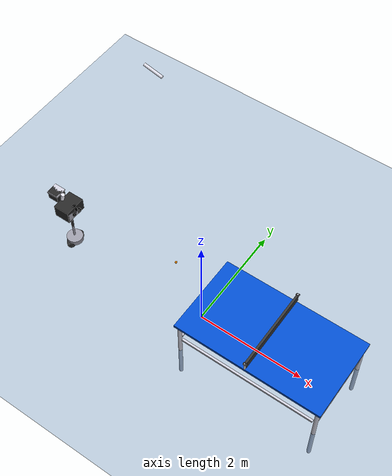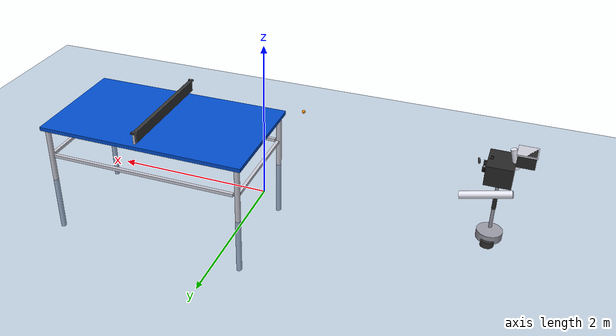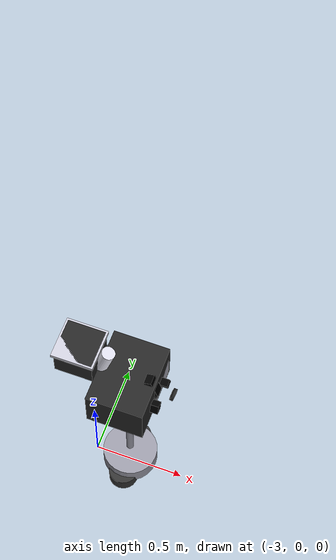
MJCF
<mujoco model="professional_table_tennis_launcher">
    <compiler angle="degree" coordinate="local"/>
    <option timestep="0.001" gravity="0 0 -9.81" viscosity="0.0001"/>
    <size njmax="1000" nconmax="100"/>

    <default>
        <geom contype="1" conaffinity="1"/>
    </default>
<asset>
        <!-- Professional Materials -->
        <material name="table_mat" rgba="0.0 0.3 0.8 1"/>
        <material name="ball_mat" rgba="1.0 1.0 1.0 1"/>
        <material name="net_mat" rgba="0.2 0.2 0.2 1"/>

        <!-- Premium Ball Launcher Materials -->
        <material name="premium_black" rgba="0.15 0.15 0.15 1"/>
        <material name="metallic_silver" rgba="0.8 0.8 0.85 1"/>
        <material name="bright_orange" rgba="1.0 0.4 0.0 1"/>
        <material name="professional_gray" rgba="0.5 0.5 0.5 1"/>
        <material name="mesh_pattern" rgba="0.25 0.25 0.25 0.9"/>
        <material name="wheel_rubber" rgba="0.2 0.2 0.2 1"/>
        <material name="base_steel" rgba="0.6 0.6 0.65 1"/>
        <material name="barrel_chrome" rgba="0.9 0.9 0.95 1"/>
        <material name="control_panel" rgba="0.1 0.1 0.12 1"/>
        <material name="led_indicator" rgba="0.0 1.0 0.0 1"/>
        <material name="pure_black" rgba="0 0 0 1"/>

        <!-- Texture Materials -->
        <material name="brushed_metal" rgba="0.7 0.7 0.75 1"/>
        <material name="carbon_fiber" rgba="0.1 0.1 0.15 1"/>
        <texture name="yellow_red_texture" type="2d" builtin="checker"
           rgb1="1.0 1.0 0.0" rgb2="0.8 0.0 0.0"
           width="256" height="128"/>
        <material name="yellow_red_material" texture="yellow_red_texture"
            specular="0.5" shininess="0.8" reflectance="0.15"/>

    </asset>

    <worldbody>
        <!-- Professional Lighting Setup -->
        <light directional="true" cutoff="100" exponent="1" diffuse="1 1 1"
               specular="0.3 0.3 0.3" pos="3 3 4" dir="-1 -1 -1"/>
        <light directional="true" cutoff="100" exponent="1" diffuse="0.6 0.6 0.8"
               specular="0.1 0.1 0.1" pos="-2 2 3" dir="1 -1 -1"/>

        <!-- Professional Court Floor -->
        <geom name="court_floor" type="plane" size="8 6 0.05" rgba="0.2 0.4 0.6 1"/>

        <!-- Professional Table Tennis Table -->
        <body name="table" pos="1.37 0 0.76">
            <geom name="table_surface" type="box" size="1.37 0.7625 0.025" material="table_mat"/>
            <body name="hit_marker" pos="0 0 0">
    <geom name="marker" type="sphere" size="0.02" rgba="1 0 0 1"/>
</body>

            <!-- Professional Table Legs with Cross Bracing -->
            <geom name="leg_fl" type="cylinder" size="0.035 0.76" pos="1.30 0.70 -0.76" material="metallic_silver"/>
            <geom name="leg_fr" type="cylinder" size="0.035 0.76" pos="-1.30 0.70 -0.76" material="metallic_silver"/>
            <geom name="leg_bl" type="cylinder" size="0.035 0.76" pos="1.30 -0.70 -0.76" material="metallic_silver"/>
            <geom name="leg_br" type="cylinder" size="0.035 0.76" pos="-1.30 -0.70 -0.76" material="metallic_silver"/>

            <!-- Cross Bracing for Stability -->
            <geom name="brace_front" type="box" size="1.25 0.02 0.02" pos="0 0.70 -0.40" material="metallic_silver"/>
            <geom name="brace_back" type="box" size="1.25 0.02 0.02" pos="0 -0.70 -0.40" material="metallic_silver"/>
            <geom name="brace_left" type="box" size="0.02 0.65 0.02" pos="1.30 0 -0.40" material="metallic_silver"/>
            <geom name="brace_right" type="box" size="0.02 0.65 0.02" pos="-1.30 0 -0.40" material="metallic_silver"/>
        </body>

        <!-- Professional Net Assembly -->
        <body name="net_assembly" pos="1.37 0 0.9125">
            <geom name="net_mesh" type="box" size="0.02 0.76 0.0762" material="net_mat"/>
            <geom name="net_post_left" type="cylinder" size="0.015 0.08" pos="0 0.77 0" material="metallic_silver"/>
            <geom name="net_post_right" type="cylinder" size="0.015 0.08" pos="0 -0.77 0" material="metallic_silver"/>
            <geom name="net_clamp_left" type="box" size="0.03 0.02 0.01" pos="0 0.77 0.07" material="premium_black"/>
            <geom name="net_clamp_right" type="box" size="0.03 0.02 0.01" pos="0 -0.77 0.07" material="premium_black"/>
        </body>

        <!-- PROFESSIONAL BALL LAUNCHER MACHINE -->
        <body name="launcher_machine" pos="-2.8 0 0.98" euler="0 0 -90">

            <!-- Main Professional Housing -->
            <geom name="main_housing" type="box" size="0.20 0.15 0.12"
                  pos="0 0 0" material="premium_black" contype="0" conaffinity="0"/>

            <!-- Decorative Side Panels -->
            <geom name="side_panel_left" type="box" size="0.18 0.02 0.10"
                  pos="0 0.13 0" material="brushed_metal" contype="0" conaffinity="0"/>
            <geom name="side_panel_right" type="box" size="0.18 0.02 0.10"
                  pos="0 -0.13 0" material="brushed_metal" contype="0" conaffinity="0"/>

            <!-- Professional Logo/Brand Panel -->
            <geom name="brand_panel" type="box" size="0.12 0.05 0.001"
                  pos="0 0 0.11" material="metallic_silver" contype="0" conaffinity="0"/>

            <!-- CENTER TARGETING SYSTEM -->
            <geom name="center_circle" type="cylinder" size="0.035 0.012"
                  pos="0 0.13 0" euler="90 0 0" material="bright_orange"
                  contype="1" conaffinity="1"/>

            <!-- Professional Targeting Grid -->
            <geom name="target_v1" type="box" size="0.0008 0.012 0.05"
                  pos="-0.02 0.142 0" material="mesh_pattern"/>
            <geom name="target_v2" type="box" size="0.0008 0.012 0.05"
                  pos="0.02 0.142 0" material="mesh_pattern"/>
            <geom name="target_v3" type="box" size="0.0008 0.012 0.05"
                  pos="0 0.142 0" material="mesh_pattern"/>
            <geom name="target_h1" type="box" size="0.05 0.012 0.0008"
                  pos="0 0.142 -0.02" material="mesh_pattern"/>
            <geom name="target_h2" type="box" size="0.05 0.012 0.0008"
                  pos="0 0.142 0.02" material="mesh_pattern"/>
            <geom name="target_h3" type="box" size="0.05 0.012 0.0008"
                  pos="0 0.142 0" material="mesh_pattern"/>

            <!-- Professional Launch Barrel -->
            <geom name="launch_barrel" type="cylinder" size="0.03 0.20"
                  pos="-2.5   0.    1.25" euler="76 0 0" material="barrel_chrome"
                  contype="1" conaffinity="1"/>

            <!-- Barrel Stabilizer Ring -->
            <geom name="barrel_ring" type="cylinder" size="0.032 0.008"
                  pos="0 0.24 0.055" euler="75 0 0" material="premium_black"
                  contype="0" conaffinity="0"/>

            <!-- PROFESSIONAL WHEEL SYSTEM (3 Wheels) -->

            <!-- Wheel 1 - Top Position -->
            <body name="launch_wheel_1" pos="0 0.13 0.08">
                <geom name="wheel_1_body" type="box" size="0.025 0.018 0.06"
                      euler="18 0 0" material="wheel_rubber" contype="1" conaffinity="1"/>
                <geom name="wheel_1_rim" type="box" size="0.027 0.020 0.062"
                      euler="18 0 0" material="pure_black" contype="0" conaffinity="0"/>
                <joint name="wheel_1_joint" type="hinge" axis="0 1 0" pos="0 0 0"/>
            </body>

            <!-- Wheel 2 - Left Position -->
            <body name="launch_wheel_2" pos="-0.07 0.13 0">
                <geom name="wheel_2_body" type="box" size="0.06 0.018 0.025"
                      euler="0 18 90" material="wheel_rubber" contype="1" conaffinity="1"/>
                <geom name="wheel_2_rim" type="box" size="0.062 0.020 0.027"
                      euler="0 18 90" material="pure_black" contype="0" conaffinity="0"/>
                <joint name="wheel_2_joint" type="hinge" axis="1 0 0" pos="0 0 0"/>
            </body>

            <!-- Wheel 3 - Right Position -->
            <body name="launch_wheel_3" pos="0.07 0.13 0">
                <geom name="wheel_3_body" type="box" size="0.06 0.018 0.025"
                      euler="0 -18 -90" material="wheel_rubber" contype="1" conaffinity="1"/>
                <geom name="wheel_3_rim" type="box" size="0.062 0.020 0.027"
                      euler="0 -18 -90" material="pure_black" contype="0" conaffinity="0"/>
                <joint name="wheel_3_joint" type="hinge" axis="1 0 0" pos="0 0 0"/>
            </body>

            <!-- Professional Control Panel -->
            <geom name="control_panel" type="box" size="0.08 0.06 0.02"
                  pos="0 -0.08 0.08" material="control_panel" contype="0" conaffinity="0"/>

            <!-- LED Status Indicators -->
            <geom name="led_power" type="sphere" size="0.008"
                  pos="-0.04 -0.08 0.09" material="led_indicator" contype="0" conaffinity="0"/>
            <geom name="led_ready" type="sphere" size="0.008"
                  pos="0 -0.08 0.09" material="bright_orange" contype="0" conaffinity="0"/>
            <geom name="led_launch" type="sphere" size="0.008"
                  pos="0.04 -0.08 0.09" rgba="1.0 0.0 0.0 1" contype="0" conaffinity="0"/>

            <!-- Professional Support Structure -->
            <geom name="main_support" type="cylinder" size="0.02 0.30"
                  pos="0 0 -0.49" material="base_steel" contype="0" conaffinity="0"/>

            <!-- Height Adjustment Mechanism -->
            <geom name="height_adjuster" type="cylinder" size="0.025 0.08"
                  pos="0 0 -0.45" material="premium_black" contype="0" conaffinity="0"/>

            <!-- Professional Base Platform -->
            <geom name="base_platform" type="cylinder" size="0.15 0.05"
                  pos="0 0 -0.88" material="base_steel" contype="0" conaffinity="0"/>

            <!-- Anti-tip Stabilizers -->
            <geom name="stabilizer_front" type="box" size="0.03 0.02 0.01"
                  pos="0.12 0 -0.98" material="premium_black" contype="0" conaffinity="0"/>
            <geom name="stabilizer_back" type="box" size="0.03 0.02 0.01"
                  pos="-0.12 0 -0.98" material="premium_black" contype="0" conaffinity="0"/>

            <!-- Professional Mobility Wheels -->
            <geom name="mobility_wheel_1" type="cylinder" size="0.08 0.04"
                  pos="0.11 0 -0.93" euler="0 0 90" material="wheel_rubber" contype="1" conaffinity="1"/>
            <geom name="mobility_wheel_2" type="cylinder" size="0.08 0.04"
                  pos="-0.11 0 -0.93" euler="0 0 90" material="wheel_rubber" contype="1" conaffinity="1"/>

            <!-- Wheel Hubs -->
            <geom name="hub_1" type="cylinder" size="0.03 0.02"
                  pos="0.11 0 -0.93" euler="0 0 90" material="metallic_silver" contype="0" conaffinity="0"/>
            <geom name="hub_2" type="cylinder" size="0.03 0.02"
                  pos="-0.11 0 -0.93" euler="0 0 90" material="metallic_silver" contype="0" conaffinity="0"/>

            <!-- Ball Collection Hopper -->
            <body name="ball_hopper" pos="0 -0.25 0.20">
                <geom name="hopper_main" type="box" size="0.10 0.10 0.08"
                      material="premium_black" contype="1" conaffinity="1"/>
                <geom name="hopper_rim" type="box" size="0.11 0.11 0.01"
                      pos="0 0 0.07" material="metallic_silver" contype="0" conaffinity="0"/>

                <geom name="feed_tube" type="cylinder" size="0.035 0.12"
                      pos="0 0.12 -0.04" euler="-15 0 0" material="barrel_chrome" contype="1" conaffinity="1"/>

                <!-- Ball pusher inside hopper -->
                <body name="ball_pusher" pos="0 0 0.05">
                    <geom name="pusher_plate" type="box" size="0.08 0.08 0.01"
                          material="premium_black" contype="1" conaffinity="1"/>
                    <joint name="pusher_joint" type="slide" axis="0 1 0" range="0 0.15"/>
                </body>
            </body>
        </body>

        <!-- PROFESSIONAL PING PONG BALL - POSITIONED AT BARREL EXIT -->
        <body name="launch_ball" pos="-0.5 0.0 1.25">
    <freejoint name="ball_free"/>
    <geom name="ping_pong_ball" type="sphere" size="0.02" density="" material="yellow_red_material" mass="0.0027"/>
</body>
    </worldbody>

    <contact>
        <!-- Professional Ball Physics -->
        <pair geom1="ping_pong_ball" geom2="table_surface"
              solref="0.004 0.3" solimp="0.96 0.99 0.001" friction="0.01 0.005 0.0001"/>

        <pair geom1="ping_pong_ball" geom2="net_mesh"
             solref="0.002 0.2" solimp="0.9 0.95 0.0001" friction="0.8 0.1 0.01"/>

        <pair geom1="ping_pong_ball" geom2="court_floor"
              solref="0.015 0.4" solimp="0.75 0.92 0.001" friction="0.6 0.02 0.001"/>

        <!-- Professional Launch Mechanism -->
        <pair geom1="ping_pong_ball" geom2="launch_barrel"
              solref="0.01 0.5" solimp="0.9 0.95 0.001" friction="0.2 0.02 0.001"/>

        <!-- Professional Wheel Contact (Consistent Physics) -->
        <pair geom1="ping_pong_ball" geom2="wheel_1_body"
              solref="0.01 0.5" solimp="0.9 0.95 0.001" friction="0.8 0.05 0.001"/>

        <pair geom1="ping_pong_ball" geom2="wheel_2_body"
              solref="0.01 0.5" solimp="0.9 0.95 0.001" friction="0.8 0.05 0.001"/>

        <pair geom1="ping_pong_ball" geom2="wheel_3_body"
              solref="0.01 0.5" solimp="0.9 0.95 0.001" friction="0.8 0.05 0.001"/>

        <!-- Ball Hopper and Feed System -->
        <pair geom1="ping_pong_ball" geom2="hopper_main"
              solref="0.01 0.7" solimp="0.9 0.95 0.001" friction="0.4 0.02 0.001"/>

        <pair geom1="ping_pong_ball" geom2="feed_tube"
              solref="0.005 0.8" solimp="0.95 0.98 0.001" friction="0.2 0.01 0.001"/>

        <!-- Mobility Wheel Ground Contact -->
        <pair geom1="mobility_wheel_1" geom2="court_floor"
              solref="0.01 1" solimp="0.9 0.95 0.001" friction="0.8 0.05 0.001"/>
        <pair geom1="mobility_wheel_2" geom2="court_floor"
              solref="0.01 1" solimp="0.9 0.95 0.001" friction="0.8 0.05 0.001"/>
    </contact>

    <!-- Professional Motor System -->
    <actuator>
        <motor name="wheel_1_motor" joint="wheel_1_joint" gear="400"/>
        <motor name="wheel_2_motor" joint="wheel_2_joint" gear="350"/>
        <motor name="wheel_3_motor" joint="wheel_3_joint" gear="350"/>
        <motor name="pusher_motor" joint="pusher_joint" gear="50"/>
    </actuator>
</mujoco>
